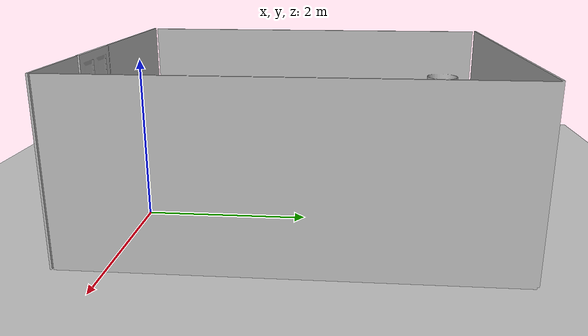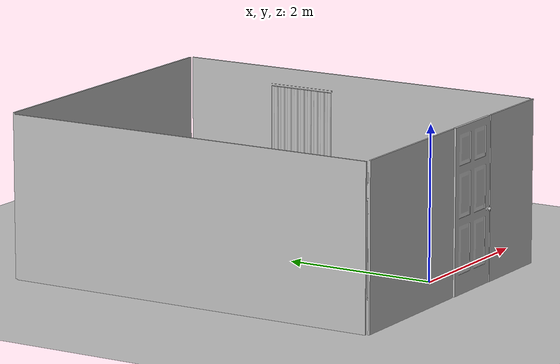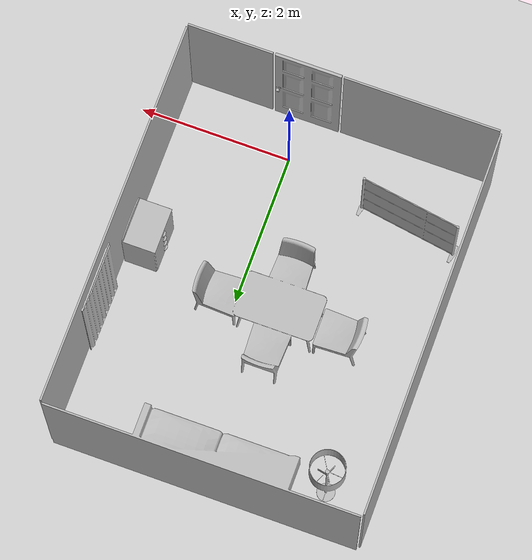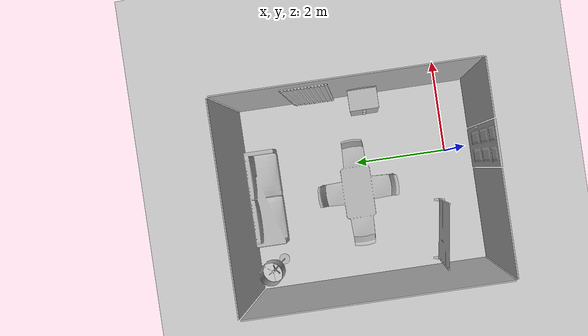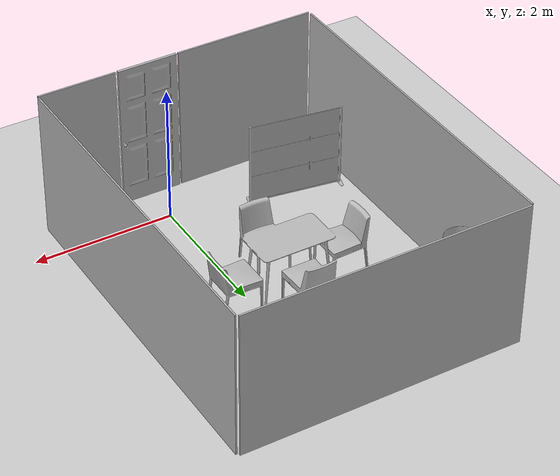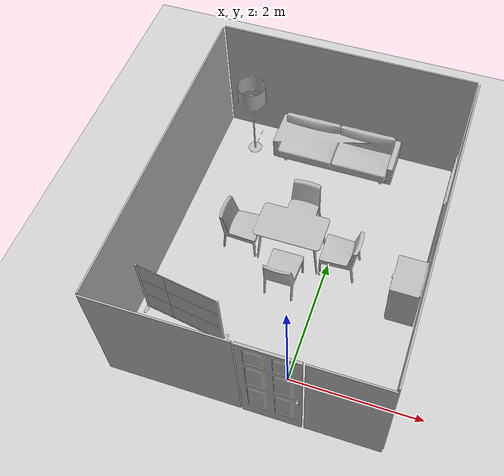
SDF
<sdf version="1.6">
  <!-- We use a custom world for the rrbot so that the camera angle is launched correctly -->

  <world name="myworld">

    <include>
      <uri>model://ground_plane</uri>
    </include>

    <!-- Global light source -->
    <include>
      <uri>model://sun</uri>
    </include>

    <!-- Load world -->
    <include>
      <uri>model://room</uri>
      <pose>0 0 0 1.57 0 0</pose>
    </include>

    <gui fullscreen='0'>
      <camera name='user_camera'>
        <pose>0.0 0.0 17.0 0 1.5708 0</pose>
        <view_controller>orbit</view_controller>
      </camera>
    </gui>

  </world>
</sdf>

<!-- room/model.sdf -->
<sdf version="1.5">
    <model name="room">
        <static>1</static>
        <link name="link">
            <collision name='collision1'>
                <geometry>
                    <mesh>
                        <uri>model://room/meshes/IEC_room.obj</uri>
                        <scale>0.001 0.001 0.001</scale>
                    </mesh>
                </geometry>
                <max_contacts>10</max_contacts>
                <surface>
                    <bounce/>
                    <friction>
                    <ode/>
                    </friction>
                    <contact>
                    <ode/>
                    </contact>
                </surface>
            </collision>

            <visual name='visual1'>
                <geometry>
                    <mesh>
                        <uri>model://room/meshes/IEC_room.obj</uri>
                        <scale>0.001 0.001 0.001</scale>
                    </mesh>
                </geometry>
            </visual>
        </link>
    </model>
</sdf>
